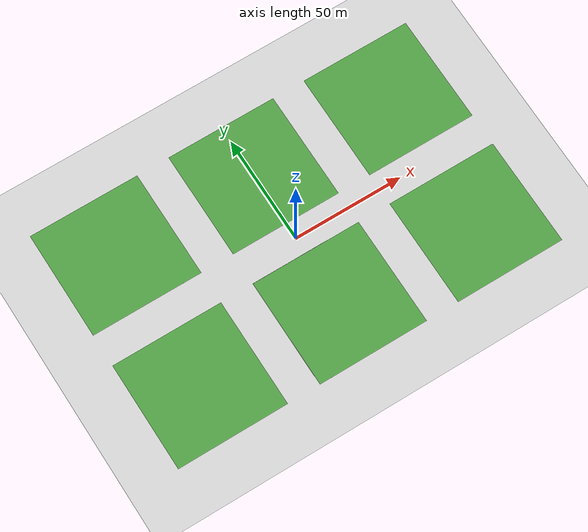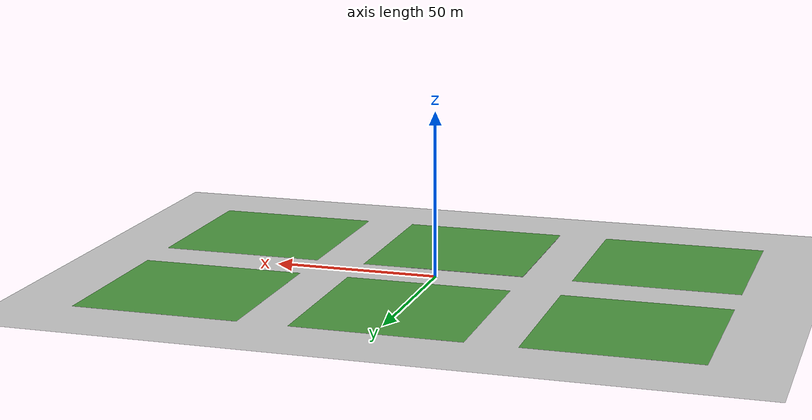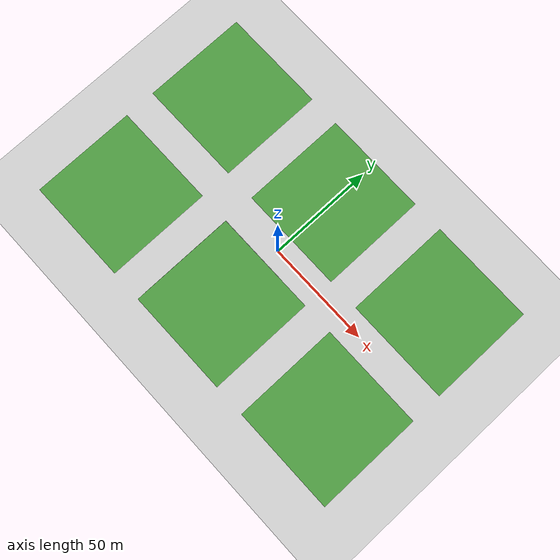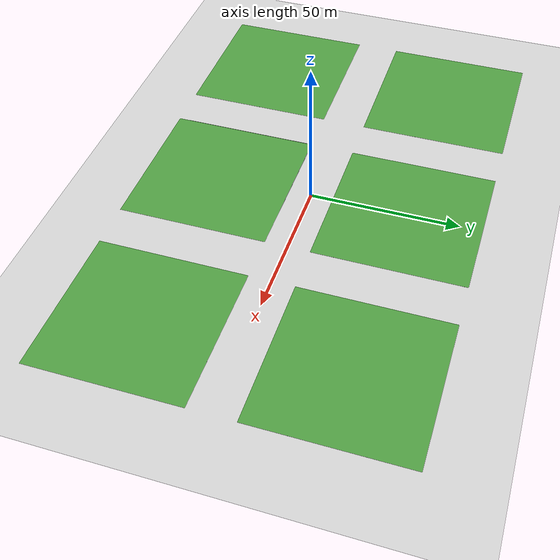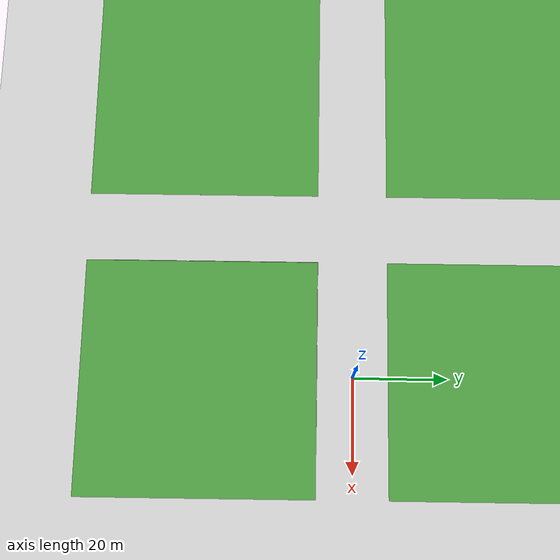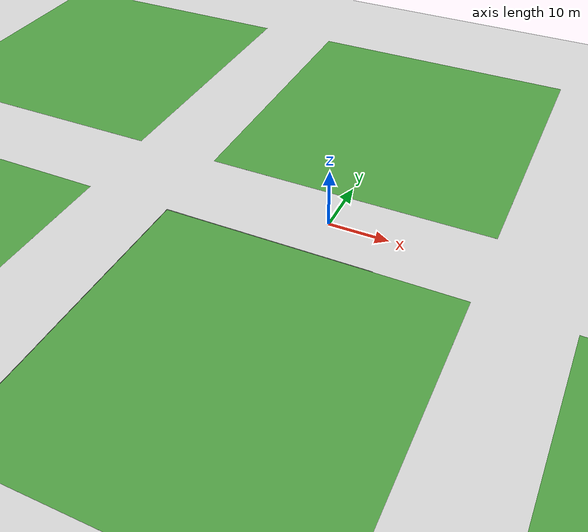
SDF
<sdf version="1.6">
 <world name="default">
  <scene>
   <grid>0</grid>
   <ambient>0.4 0.4 0.4 1</ambient>
   <background>0.7 0.7 0.7 1</background>
   <shadows>1</shadows>
  </scene>
  <light name="sun" type="directional">
   <pose>0 0 10 0 -0 0</pose>
   <diffuse>0.8 0.8 0.8 1</diffuse>
   <specular>0.2 0.2 0.2 1</specular>
   <attenuation>
    <range>1000</range>
    <constant>0.9</constant>
    <linear>0.01</linear>
    <quadratic>0.001</quadratic>
   </attenuation>
   <direction>-0.5 0.1 -0.9</direction>
  </light>
  <model name="ground_plane">
   <static>1</static>
   <link name="link">
    <collision name="collision">
     <geometry><plane><normal>0 0 1</normal><size>100 100</size></plane></geometry>
     <surface><friction><ode><mu>100</mu><mu2>50</mu2></ode></friction></surface>
    </collision>
    <visual name="visual">
     <cast_shadows>0</cast_shadows>
     <geometry><plane><normal>0 0 1</normal><size>100 100</size></plane></geometry>
     <material>
      <script><uri>file://media/materials/scripts/gazebo.material</uri><name>Gazebo/Grey</name></script>
     </material>
    </visual>
   </link>
  </model>
  <gravity>0 0 -9.8</gravity>
  <magnetic_field>6e-06 2.3e-05 -4.2e-05</magnetic_field>
  <atmosphere type="adiabatic"/>
  <physics name="default_physics" default="0" type="ode">
   <max_step_size>0.001</max_step_size>
   <real_time_factor>1</real_time_factor>
   <real_time_update_rate>1000</real_time_update_rate>
  </physics>
  <audio><device>default</device></audio>
  <spherical_coordinates>
   <surface_model>EARTH_WGS84</surface_model>
   <latitude_deg>0</latitude_deg>
   <longitude_deg>0</longitude_deg>
   <elevation>0</elevation>
   <heading_deg>0</heading_deg>
  </spherical_coordinates>
  <model name="grass_plane">
   <static>1</static>
   <link name="link">
    <collision name="collision"><geometry><box><size>50 50 0.001</size></box></geometry></collision>
    <visual name="visual">
     <cast_shadows>0</cast_shadows>
     <geometry><box><size>50 50 0.001</size></box></geometry>
     <material>
      <script>
       <uri>model://grass_plane/materials/scripts</uri>
       <uri>model://grass_plane/materials/textures</uri>
       <name>vrc/grass_plane</name>
      </script>
     </material>
    </visual>
   </link>
   <pose>0 32.5 0 0 -0 0</pose>
  </model>
  <model name="grass_plane_0">
   <static>1</static>
   <link name="link">
    <collision name="collision"><geometry><box><size>50 50 0.001</size></box></geometry></collision>
    <visual name="visual">
     <cast_shadows>0</cast_shadows>
     <geometry><box><size>50 50 0.001</size></box></geometry>
     <material>
      <script>
       <uri>model://grass_plane/materials/scripts</uri>
       <uri>model://grass_plane/materials/textures</uri>
       <name>vrc/grass_plane</name>
      </script>
     </material>
    </visual>
   </link>
   <pose>0 -32.5 0 0 -0 0</pose>
  </model>
  <model name="grass_plane_clone">
   <static>1</static>
   <link name="link">
    <collision name="collision"><geometry><box><size>50 50 0.001</size></box></geometry></collision>
    <visual name="visual">
     <cast_shadows>0</cast_shadows>
     <geometry><box><size>50 50 0.001</size></box></geometry>
     <material>
      <script>
       <uri>model://grass_plane/materials/scripts</uri>
       <uri>model://grass_plane/materials/textures</uri>
       <name>vrc/grass_plane</name>
      </script>
     </material>
    </visual>
   </link>
   <pose>-65 32.5 0 0 -0 0</pose>
  </model>
  <model name="grass_plane_clone_0">
   <static>1</static>
   <link name="link">
    <collision name="collision"><geometry><box><size>50 50 0.001</size></box></geometry></collision>
    <visual name="visual">
     <cast_shadows>0</cast_shadows>
     <geometry><box><size>50 50 0.001</size></box></geometry>
     <material>
      <script>
       <uri>model://grass_plane/materials/scripts</uri>
       <uri>model://grass_plane/materials/textures</uri>
       <name>vrc/grass_plane</name>
      </script>
     </material>
    </visual>
   </link>
   <pose>-65 -32.5 0 0 -0 0</pose>
  </model>
  <model name="grass_plane_clone_1">
   <static>1</static>
   <link name="link">
    <collision name="collision"><geometry><box><size>50 50 0.001</size></box></geometry></collision>
    <visual name="visual">
     <cast_shadows>0</cast_shadows>
     <geometry><box><size>50 50 0.001</size></box></geometry>
     <material>
      <script>
       <uri>model://grass_plane/materials/scripts</uri>
       <uri>model://grass_plane/materials/textures</uri>
       <name>vrc/grass_plane</name>
      </script>
     </material>
    </visual>
   </link>
   <pose>65 -32.5 0 0 -0 0</pose>
  </model>
  <model name="grass_plane_clone_2">
   <static>1</static>
   <link name="link">
    <collision name="collision"><geometry><box><size>50 50 0.001</size></box></geometry></collision>
    <visual name="visual">
     <cast_shadows>0</cast_shadows>
     <geometry><box><size>50 50 0.001</size></box></geometry>
     <material>
      <script>
       <uri>model://grass_plane/materials/scripts</uri>
       <uri>model://grass_plane/materials/textures</uri>
       <name>vrc/grass_plane</name>
      </script>
     </material>
    </visual>
   </link>
   <pose>65 32.5 0 0 -0 0</pose>
  </model>
  <model name="unit_box_clone">
   <pose>-25.0327 -12.7805 0.029006 7e-06 -0.000181 0.00025</pose>
   <link name="link">
    <inertial>
     <mass>1</mass>
     <inertia>
      <ixx>0.166667</ixx>
      <ixy>0</ixy>
      <ixz>0</ixz>
      <iyy>0.166667</iyy>
      <iyz>0</iyz>
      <izz>0.166667</izz>
     </inertia>
    </inertial>
    <collision name="collision"><geometry><box><size>0.06452 3.52822 0.058026</size></box></geometry></collision>
    <visual name="visual">
     <geometry><box><size>0.06452 3.52822 0.058026</size></box></geometry>
     <material>
      <script><name>Gazebo/Grey</name><uri>file://media/materials/scripts/gazebo.material</uri></script>
     </material>
    </visual>
   </link>
  </model>
  <model name="unit_box_clone_clone">
   <pose>-25.0326 -16.3088 0.028698 0.000185 0.000351 -0.000165</pose>
   <link name="link">
    <inertial>
     <mass>1</mass>
     <inertia>
      <ixx>0.166667</ixx>
      <ixy>0</ixy>
      <ixz>0</ixz>
      <iyy>0.166667</iyy>
      <iyz>0</iyz>
      <izz>0.166667</izz>
     </inertia>
    </inertial>
    <collision name="collision"><geometry><box><size>0.06452 3.52822 0.058026</size></box></geometry></collision>
    <visual name="visual">
     <geometry><box><size>0.06452 3.52822 0.058026</size></box></geometry>
     <material>
      <script><name>Gazebo/Grey</name><uri>file://media/materials/scripts/gazebo.material</uri></script>
     </material>
    </visual>
   </link>
  </model>
  <model name="unit_box_clone_clone_0">
   <pose>-25.0339 -19.8408 0.028669 0.000201 0.000357 -0.000866</pose>
   <link name="link">
    <inertial>
     <mass>1</mass>
     <inertia>
      <ixx>0.166667</ixx>
      <ixy>0</ixy>
      <ixz>0</ixz>
      <iyy>0.166667</iyy>
      <iyz>0</iyz>
      <izz>0.166667</izz>
     </inertia>
    </inertial>
    <collision name="collision"><geometry><box><size>0.06452 3.52822 0.058026</size></box></geometry></collision>
    <visual name="visual">
     <geometry><box><size>0.06452 3.52822 0.058026</size></box></geometry>
     <material>
      <script><name>Gazebo/Grey</name><uri>file://media/materials/scripts/gazebo.material</uri></script>
     </material>
    </visual>
   </link>
  </model>
  <model name="unit_box_clone_clone_1">
   <pose>-25.0381 -23.3791 0.028669 0.000201 -0.000357 -0.00309</pose>
   <link name="link">
    <inertial>
     <mass>1</mass>
     <inertia>
      <ixx>0.166667</ixx>
      <ixy>0</ixy>
      <ixz>0</ixz>
      <iyy>0.166667</iyy>
      <iyz>0</iyz>
      <izz>0.166667</izz>
     </inertia>
    </inertial>
    <collision name="collision"><geometry><box><size>0.06452 3.52822 0.058026</size></box></geometry></collision>
    <visual name="visual">
     <geometry><box><size>0.06452 3.52822 0.058026</size></box></geometry>
     <material>
      <script><name>Gazebo/Grey</name><uri>file://media/materials/scripts/gazebo.material</uri></script>
     </material>
    </visual>
   </link>
  </model>
  <model name="unit_box_clone_clone_2">
   <pose>-25.0341 -26.9075 0.028669 0.000201 0.000357 0.000971</pose>
   <link name="link">
    <inertial>
     <mass>1</mass>
     <inertia>
      <ixx>0.166667</ixx>
      <ixy>0</ixy>
      <ixz>0</ixz>
      <iyy>0.166667</iyy>
      <iyz>0</iyz>
      <izz>0.166667</izz>
     </inertia>
    </inertial>
    <collision name="collision"><geometry><box><size>0.06452 3.52822 0.058026</size></box></geometry></collision>
    <visual name="visual">
     <geometry><box><size>0.06452 3.52822 0.058026</size></box></geometry>
     <material>
      <script><name>Gazebo/Grey</name><uri>file://media/materials/scripts/gazebo.material</uri></script>
     </material>
    </visual>
   </link>
  </model>
  <model name="unit_box_clone_clone_1_clone">
   <pose>-23.3067 -7.44605 0.028641 -0.000217 -0.00036 -1.5701</pose>
   <link name="link">
    <inertial>
     <mass>1</mass>
     <inertia>
      <ixx>0.166667</ixx>
      <ixy>0</ixy>
      <ixz>0</ixz>
      <iyy>0.166667</iyy>
      <iyz>0</iyz>
      <izz>0.166667</izz>
     </inertia>
    </inertial>
    <collision name="collision"><geometry><box><size>0.06452 3.52822 0.058026</size></box></geometry></collision>
    <visual name="visual">
     <geometry><box><size>0.06452 3.52822 0.058026</size></box></geometry>
     <material>
      <script><name>Gazebo/Grey</name><uri>file://media/materials/scripts/gazebo.material</uri></script>
     </material>
    </visual>
   </link>
  </model>
  <model name="unit_box_clone_clone_1_clone_clone">
   <pose>-19.7784 -7.46196 0.028347 0.000386 -0.000479 -1.57078</pose>
   <link name="link">
    <inertial>
     <mass>1</mass>
     <inertia>
      <ixx>0.166667</ixx>
      <ixy>0</ixy>
      <ixz>0</ixz>
      <iyy>0.166667</iyy>
      <iyz>0</iyz>
      <izz>0.166667</izz>
     </inertia>
    </inertial>
    <collision name="collision"><geometry><box><size>0.06452 3.52822 0.058026</size></box></geometry></collision>
    <visual name="visual">
     <geometry><box><size>0.06452 3.52822 0.058026</size></box></geometry>
     <material>
      <script><name>Gazebo/Grey</name><uri>file://media/materials/scripts/gazebo.material</uri></script>
     </material>
    </visual>
   </link>
  </model>
  <model name="unit_box_clone_clone_1_clone_clone_0">
   <pose>-16.2501 -7.46647 0.028639 -0.000202 9.1e-05 -1.57008</pose>
   <link name="link">
    <inertial>
     <mass>1</mass>
     <inertia>
      <ixx>0.166667</ixx>
      <ixy>0</ixy>
      <ixz>0</ixz>
      <iyy>0.166667</iyy>
      <iyz>0</iyz>
      <izz>0.166667</izz>
     </inertia>
    </inertial>
    <collision name="collision"><geometry><box><size>0.06452 3.52822 0.058026</size></box></geometry></collision>
    <visual name="visual">
     <geometry><box><size>0.06452 3.52822 0.058026</size></box></geometry>
     <material>
      <script><name>Gazebo/Grey</name><uri>file://media/materials/scripts/gazebo.material</uri></script>
     </material>
    </visual>
   </link>
  </model>
  <model name="unit_box_clone_clone_1_clone_clone_1">
   <pose>-12.7219 -7.4543 0.028541 0.000274 0.000366 -1.57021</pose>
   <link name="link">
    <inertial>
     <mass>1</mass>
     <inertia>
      <ixx>0.166667</ixx>
      <ixy>0</ixy>
      <ixz>0</ixz>
      <iyy>0.166667</iyy>
      <iyz>0</iyz>
      <izz>0.166667</izz>
     </inertia>
    </inertial>
    <collision name="collision"><geometry><box><size>0.06452 3.52822 0.058026</size></box></geometry></collision>
    <visual name="visual">
     <geometry><box><size>0.06452 3.52822 0.058026</size></box></geometry>
     <material>
      <script><name>Gazebo/Grey</name><uri>file://media/materials/scripts/gazebo.material</uri></script>
     </material>
    </visual>
   </link>
  </model>
  <model name="unit_box_clone_clone_1_clone_clone_2">
   <pose>-9.19361 -7.46118 0.028541 -0.000274 0.000347 -1.57083</pose>
   <link name="link">
    <inertial>
     <mass>1</mass>
     <inertia>
      <ixx>0.166667</ixx>
      <ixy>0</ixy>
      <ixz>0</ixz>
      <iyy>0.166667</iyy>
      <iyz>0</iyz>
      <izz>0.166667</izz>
     </inertia>
    </inertial>
    <collision name="collision"><geometry><box><size>0.06452 3.52822 0.058026</size></box></geometry></collision>
    <visual name="visual">
     <geometry><box><size>0.06452 3.52822 0.058026</size></box></geometry>
     <material>
      <script><name>Gazebo/Grey</name><uri>file://media/materials/scripts/gazebo.material</uri></script>
     </material>
    </visual>
   </link>
  </model>
  <model name="unit_box_clone_clone_1_clone_clone_3">
   <pose>-5.66536 -7.46143 0.028293 0.000404 -7.8e-05 -1.56992</pose>
   <link name="link">
    <inertial>
     <mass>1</mass>
     <inertia>
      <ixx>0.166667</ixx>
      <ixy>0</ixy>
      <ixz>0</ixz>
      <iyy>0.166667</iyy>
      <iyz>0</iyz>
      <izz>0.166667</izz>
     </inertia>
    </inertial>
    <collision name="collision"><geometry><box><size>0.06452 3.52822 0.058026</size></box></geometry></collision>
    <visual name="visual">
     <geometry><box><size>0.06452 3.52822 0.058026</size></box></geometry>
     <material>
      <script><name>Gazebo/Grey</name><uri>file://media/materials/scripts/gazebo.material</uri></script>
     </material>
    </visual>
   </link>
  </model>
  <model name="unit_box_clone_clone_1_clone_clone_4">
   <pose>-2.13707 -7.4587 0.028434 -0.000332 -0.000198 -1.57071</pose>
   <link name="link">
    <inertial>
     <mass>1</mass>
     <inertia>
      <ixx>0.166667</ixx>
      <ixy>0</ixy>
      <ixz>0</ixz>
      <iyy>0.166667</iyy>
      <iyz>0</iyz>
      <izz>0.166667</izz>
     </inertia>
    </inertial>
    <collision name="collision"><geometry><box><size>0.06452 3.52822 0.058026</size></box></geometry></collision>
    <visual name="visual">
     <geometry><box><size>0.06452 3.52822 0.058026</size></box></geometry>
     <material>
      <script><name>Gazebo/Grey</name><uri>file://media/materials/scripts/gazebo.material</uri></script>
     </material>
    </visual>
   </link>
  </model>
  <model name="unit_box_clone_clone_1_clone_clone_5">
   <pose>1.39118 -7.46383 0.028668 0.000202 0.000353 -1.57027</pose>
   <link name="link">
    <inertial>
     <mass>1</mass>
     <inertia>
      <ixx>0.166667</ixx>
      <ixy>0</ixy>
      <ixz>0</ixz>
      <iyy>0.166667</iyy>
      <iyz>0</iyz>
      <izz>0.166667</izz>
     </inertia>
    </inertial>
    <collision name="collision"><geometry><box><size>0.06452 3.52822 0.058026</size></box></geometry></collision>
    <visual name="visual">
     <geometry><box><size>0.06452 3.52822 0.058026</size></box></geometry>
     <material>
      <script><name>Gazebo/Grey</name><uri>file://media/materials/scripts/gazebo.material</uri></script>
     </material>
    </visual>
   </link>
  </model>
  <model name="unit_box_clone_clone_1_clone_clone_6">
   <pose>4.91943 -7.46509 0.028479 0.000309 -0.000325 -1.57009</pose>
   <link name="link">
    <inertial>
     <mass>1</mass>
     <inertia>
      <ixx>0.166667</ixx>
      <ixy>0</ixy>
      <ixz>0</ixz>
      <iyy>0.166667</iyy>
      <iyz>0</iyz>
      <izz>0.166667</izz>
     </inertia>
    </inertial>
    <collision name="collision"><geometry><box><size>0.06452 3.52822 0.058026</size></box></geometry></collision>
    <visual name="visual">
     <geometry><box><size>0.06452 3.52822 0.058026</size></box></geometry>
     <material>
      <script><name>Gazebo/Grey</name><uri>file://media/materials/scripts/gazebo.material</uri></script>
     </material>
    </visual>
   </link>
  </model>
  <model name="unit_box_clone_clone_1_clone_clone_7">
   <pose>8.44772 -7.46304 0.028789 -0.000133 -0.000321 -1.57035</pose>
   <link name="link">
    <inertial>
     <mass>1</mass>
     <inertia>
      <ixx>0.166667</ixx>
      <ixy>0</ixy>
      <ixz>0</ixz>
      <iyy>0.166667</iyy>
      <iyz>0</iyz>
      <izz>0.166667</izz>
     </inertia>
    </inertial>
    <collision name="collision"><geometry><box><size>0.06452 3.52822 0.058026</size></box></geometry></collision>
    <visual name="visual">
     <geometry><box><size>0.06452 3.52822 0.058026</size></box></geometry>
     <material>
      <script><name>Gazebo/Grey</name><uri>file://media/materials/scripts/gazebo.material</uri></script>
     </material>
    </visual>
   </link>
  </model>
  <model name="unit_box_clone_clone_2_clone">
   <pose>-25.0397 -30.4551 0.028788 -0.000133 -0.000328 -0.001218</pose>
   <link name="link">
    <inertial>
     <mass>1</mass>
     <inertia>
      <ixx>0.166667</ixx>
      <ixy>0</ixy>
      <ixz>0</ixz>
      <iyy>0.166667</iyy>
      <iyz>0</iyz>
      <izz>0.166667</izz>
     </inertia>
    </inertial>
    <collision name="collision"><geometry><box><size>0.06452 3.52822 0.058026</size></box></geometry></collision>
    <visual name="visual">
     <geometry><box><size>0.06452 3.52822 0.058026</size></box></geometry>
     <material>
      <script><name>Gazebo/Grey</name><uri>file://media/materials/scripts/gazebo.material</uri></script>
     </material>
    </visual>
   </link>
  </model>
  <model name="unit_box_clone_clone_2_clone_0">
   <pose>-25.0394 -33.9833 0.028444 -0.000329 -0.000352 0.000314</pose>
   <link name="link">
    <inertial>
     <mass>1</mass>
     <inertia>
      <ixx>0.166667</ixx>
      <ixy>0</ixy>
      <ixz>0</ixz>
      <iyy>0.166667</iyy>
      <iyz>0</iyz>
      <izz>0.166667</izz>
     </inertia>
    </inertial>
    <collision name="collision"><geometry><box><size>0.06452 3.52822 0.058026</size></box></geometry></collision>
    <visual name="visual">
     <geometry><box><size>0.06452 3.52822 0.058026</size></box></geometry>
     <material>
      <script><name>Gazebo/Grey</name><uri>file://media/materials/scripts/gazebo.material</uri></script>
     </material>
    </visual>
   </link>
  </model>
  <model name="unit_box_clone_clone_2_clone_1">
   <pose>-25.0331 -37.5116 0.028626 0.000223 0.000516 0.000477</pose>
   <link name="link">
    <inertial>
     <mass>1</mass>
     <inertia>
      <ixx>0.166667</ixx>
      <ixy>0</ixy>
      <ixz>0</ixz>
      <iyy>0.166667</iyy>
      <iyz>0</iyz>
      <izz>0.166667</izz>
     </inertia>
    </inertial>
    <collision name="collision"><geometry><box><size>0.06452 3.52822 0.058026</size></box></geometry></collision>
    <visual name="visual">
     <geometry><box><size>0.06452 3.52822 0.058026</size></box></geometry>
     <material>
      <script><name>Gazebo/Grey</name><uri>file://media/materials/scripts/gazebo.material</uri></script>
     </material>
    </visual>
   </link>
  </model>
  <model name="unit_box_clone_clone_2_clone_2">
   <pose>-25.0247 -41.0398 0.028573 -0.000417 -0.009037 -1.1e-05</pose>
   <link name="link">
    <inertial>
     <mass>1</mass>
     <inertia>
      <ixx>0.166667</ixx>
      <ixy>0</ixy>
      <ixz>0</ixz>
      <iyy>0.166667</iyy>
      <iyz>0</iyz>
      <izz>0.166667</izz>
     </inertia>
    </inertial>
    <collision name="collision"><geometry><box><size>0.06452 3.52822 0.058026</size></box></geometry></collision>
    <visual name="visual">
     <geometry><box><size>0.06452 3.52822 0.058026</size></box></geometry>
     <material>
      <script><name>Gazebo/Grey</name><uri>file://media/materials/scripts/gazebo.material</uri></script>
     </material>
    </visual>
   </link>
  </model>
  <model name="unit_box_clone_clone_2_clone_3">
   <pose>-25.0302 -44.5681 0.028474 0.000459 -0.008253 -6e-06</pose>
   <link name="link">
    <inertial>
     <mass>1</mass>
     <inertia>
      <ixx>0.166667</ixx>
      <ixy>0</ixy>
      <ixz>0</ixz>
      <iyy>0.166667</iyy>
      <iyz>0</iyz>
      <izz>0.166667</izz>
     </inertia>
    </inertial>
    <collision name="collision"><geometry><box><size>0.06452 3.52822 0.058026</size></box></geometry></collision>
    <visual name="visual">
     <geometry><box><size>0.06452 3.52822 0.058026</size></box></geometry>
     <material>
      <script><name>Gazebo/Grey</name><uri>file://media/materials/scripts/gazebo.material</uri></script>
     </material>
    </visual>
   </link>
  </model>
  <model name="unit_box_clone_clone_2_clone_4">
   <pose>-25.0336 -48.0964 0.028455 0.000321 0.000232 0.000179</pose>
   <link name="link">
    <inertial>
     <mass>1</mass>
     <inertia>
      <ixx>0.166667</ixx>
      <ixy>0</ixy>
      <ixz>0</ixz>
      <iyy>0.166667</iyy>
      <iyz>0</iyz>
      <izz>0.166667</izz>
     </inertia>
    </inertial>
    <collision name="collision"><geometry><box><size>0.06452 3.52822 0.058026</size></box></geometry></collision>
    <visual name="visual">
     <geometry><box><size>0.06452 3.52822 0.058026</size></box></geometry>
     <material>
      <script><name>Gazebo/Grey</name><uri>file://media/materials/scripts/gazebo.material</uri></script>
     </material>
    </visual>
   </link>
  </model>
  <model name="unit_box_clone_clone_2_clone_5">
   <pose>-25.0333 -51.6246 0.028936 4.8e-05 -0.000228 -0.000586</pose>
   <link name="link">
    <inertial>
     <mass>1</mass>
     <inertia>
      <ixx>0.166667</ixx>
      <ixy>0</ixy>
      <ixz>0</ixz>
      <iyy>0.166667</iyy>
      <iyz>0</iyz>
      <izz>0.166667</izz>
     </inertia>
    </inertial>
    <collision name="collision"><geometry><box><size>0.06452 3.52822 0.058026</size></box></geometry></collision>
    <visual name="visual">
     <geometry><box><size>0.06452 3.52822 0.058026</size></box></geometry>
     <material>
      <script><name>Gazebo/Grey</name><uri>file://media/materials/scripts/gazebo.material</uri></script>
     </material>
    </visual>
   </link>
  </model>
  <model name="unit_box_clone_clone_3">
   <pose>-25.0331 -9.24795 0.028669 -0.000201 0.000357 0.000245</pose>
   <link name="link">
    <inertial>
     <mass>1</mass>
     <inertia>
      <ixx>0.166667</ixx>
      <ixy>0</ixy>
      <ixz>0</ixz>
      <iyy>0.166667</iyy>
      <iyz>0</iyz>
      <izz>0.166667</izz>
     </inertia>
    </inertial>
    <collision name="collision"><geometry><box><size>0.06452 3.52822 0.058026</size></box></geometry></collision>
    <visual name="visual">
     <geometry><box><size>0.06452 3.52822 0.058026</size></box></geometry>
     <material>
      <script><name>Gazebo/Grey</name><uri>file://media/materials/scripts/gazebo.material</uri></script>
     </material>
    </visual>
   </link>
  </model>
 </world>
</sdf>
